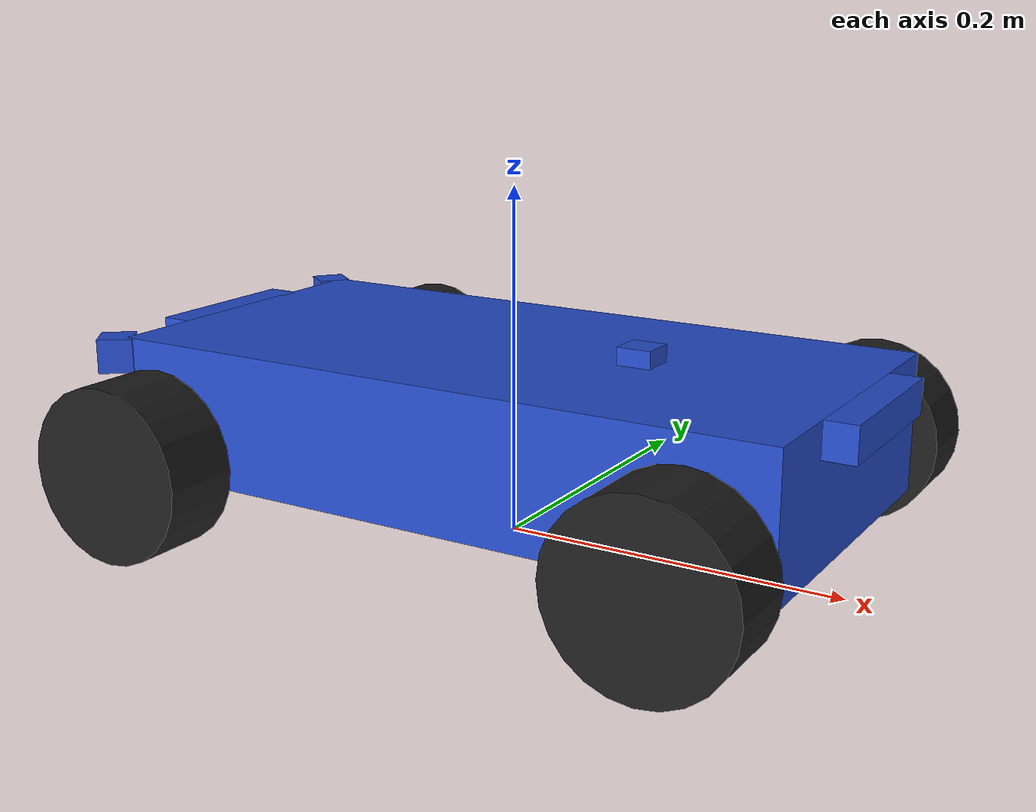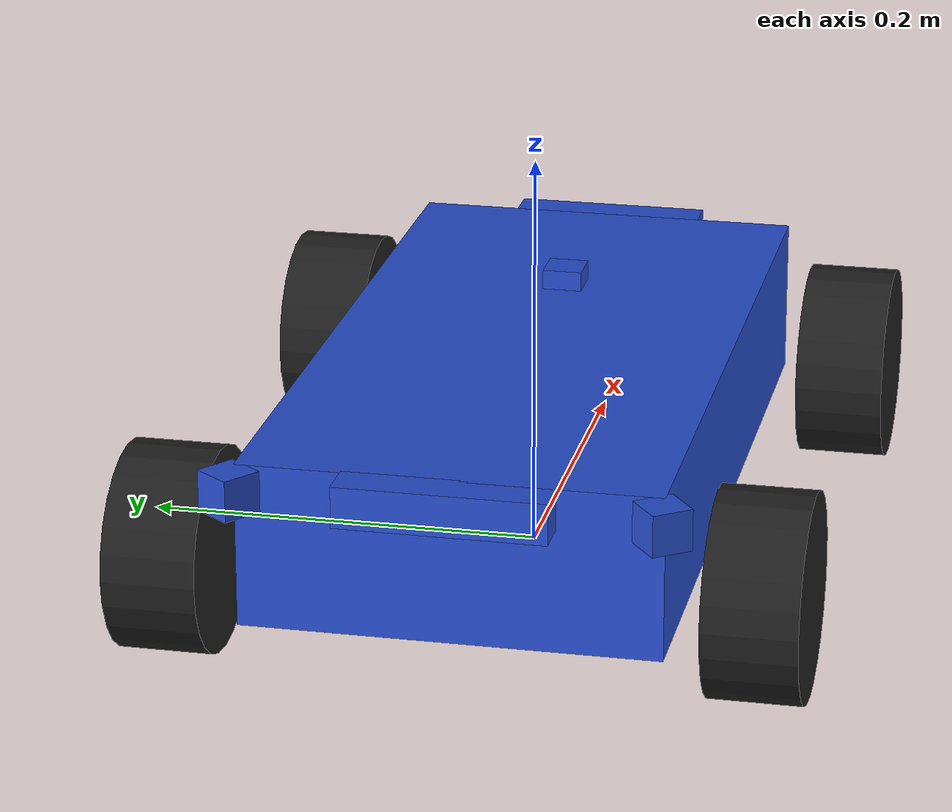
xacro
<?xml version="1.0"?>

<robot name="f1tenth_reverse_parking" xmlns:xacro="http://www.ros.org/wiki/xacro">

<!-- ros_control plugin -->
  <gazebo>
    <plugin name="gazebo_ros_control" filename="libgazebo_ros_control.so">
      <robotSimType>gazebo_ros_control/DefaultRobotHWSim</robotSimType>
    </plugin>
  </gazebo>

<!-- camera1 -->

  <gazebo reference="camera1_link">
    <sensor type="depth" name="camera1">
        <always_on>1</always_on>
        <visualize>true</visualize>
        <camera>
            <horizontal_fov>1.047</horizontal_fov>
            <image>
                <width>640</width>
                <height>480</height>
                <format>R8G8B8</format>
            </image>
            <depth_camera>

            </depth_camera>
            <clip>
                <near>0.1</near>
                <far>100</far>
            </clip>
        </camera>
             <plugin name="camera_controller" filename="libgazebo_ros_openni_kinect.so">
             <alwaysOn>true</alwaysOn>
                <updateRate>10.0</updateRate>
                <cameraName>camera1</cameraName>
                <frameName>camera_link</frameName>
            <imageTopicName>rgb/image_raw</imageTopicName>
            <depthImageTopicName>depth/image_raw</depthImageTopicName>
            <pointCloudTopicName>depth/points</pointCloudTopicName>
            <cameraInfoTopicName>rgb/camera_info</cameraInfoTopicName>
            <depthImageCameraInfoTopicName>depth/camera_info</depthImageCameraInfoTopicName>
            <pointCloudCutoff>0.4</pointCloudCutoff>
                <hackBaseline>0.07</hackBaseline>
                <distortionK1>0.0</distortionK1>
                <distortionK2>0.0</distortionK2>
                <distortionK3>0.0</distortionK3>
                <distortionT1>0.0</distortionT1>
                <distortionT2>0.0</distortionT2>
            <CxPrime>0.0</CxPrime>
            <Cx>0.0</Cx>
            <Cy>0.0</Cy>
            <focalLength>0.0</focalLength>
            </plugin>
    </sensor>
  </gazebo>

<!-- camera2 -->

  <gazebo reference="camera2_link">
    <sensor type="depth" name="camera2">
        <always_on>1</always_on>
        <visualize>true</visualize>
        <camera>
            <horizontal_fov>1.047</horizontal_fov>
            <image>
                <width>640</width>
                <height>480</height>
                <format>R8G8B8</format>
            </image>
            <depth_camera>

            </depth_camera>
            <clip>
                <near>0.1</near>
                <far>100</far>
            </clip>
        </camera>
             <plugin name="camera_controller" filename="libgazebo_ros_openni_kinect.so">
             <alwaysOn>true</alwaysOn>
                <updateRate>10.0</updateRate>
                <cameraName>camera2</cameraName>
                <frameName>camera_link</frameName>
            <imageTopicName>rgb/image_raw</imageTopicName>
            <depthImageTopicName>depth/image_raw</depthImageTopicName>
            <pointCloudTopicName>depth/points</pointCloudTopicName>
            <cameraInfoTopicName>rgb/camera_info</cameraInfoTopicName>
            <depthImageCameraInfoTopicName>depth/camera_info</depthImageCameraInfoTopicName>
            <pointCloudCutoff>0.4</pointCloudCutoff>
                <hackBaseline>0.07</hackBaseline>
                <distortionK1>0.0</distortionK1>
                <distortionK2>0.0</distortionK2>
                <distortionK3>0.0</distortionK3>
                <distortionT1>0.0</distortionT1>
                <distortionT2>0.0</distortionT2>
            <CxPrime>0.0</CxPrime>
            <Cx>0.0</Cx>
            <Cy>0.0</Cy>
            <focalLength>0.0</focalLength>
            </plugin>
    </sensor>
  </gazebo>

<!-- camera3 -->

  <gazebo reference="camera3_link">
    <sensor type="depth" name="camera3">
        <always_on>1</always_on>
        <visualize>true</visualize>
        <camera>
            <horizontal_fov>1.047</horizontal_fov>
            <image>
                <width>640</width>
                <height>480</height>
                <format>R8G8B8</format>
            </image>
            <depth_camera>

            </depth_camera>
            <clip>
                <near>0.1</near>
                <far>100</far>
            </clip>
        </camera>
             <plugin name="camera_controller" filename="libgazebo_ros_openni_kinect.so">
             <alwaysOn>true</alwaysOn>
                <updateRate>10.0</updateRate>
                <cameraName>camera3</cameraName>
                <frameName>camera_link</frameName>
            <imageTopicName>rgb/image_raw</imageTopicName>
            <depthImageTopicName>depth/image_raw</depthImageTopicName>
            <pointCloudTopicName>depth/points</pointCloudTopicName>
            <cameraInfoTopicName>rgb/camera_info</cameraInfoTopicName>
            <depthImageCameraInfoTopicName>depth/camera_info</depthImageCameraInfoTopicName>
            <pointCloudCutoff>0.4</pointCloudCutoff>
                <hackBaseline>0.07</hackBaseline>
                <distortionK1>0.0</distortionK1>
                <distortionK2>0.0</distortionK2>
                <distortionK3>0.0</distortionK3>
                <distortionT1>0.0</distortionT1>
                <distortionT2>0.0</distortionT2>
            <CxPrime>0.0</CxPrime>
            <Cx>0.0</Cx>
            <Cy>0.0</Cy>
            <focalLength>0.0</focalLength>
            </plugin>
    </sensor>
  </gazebo>

<!-- camera4 -->

  <gazebo reference="camera4_link">
    <sensor type="depth" name="camera3">
        <always_on>1</always_on>
        <visualize>true</visualize>
        <camera>
            <horizontal_fov>1.047</horizontal_fov>
            <image>
                <width>640</width>
                <height>480</height>
                <format>R8G8B8</format>
            </image>
            <depth_camera>

            </depth_camera>
            <clip>
                <near>0.1</near>
                <far>100</far>
            </clip>
        </camera>
             <plugin name="camera_controller" filename="libgazebo_ros_openni_kinect.so">
             <alwaysOn>true</alwaysOn>
                <updateRate>10.0</updateRate>
                <cameraName>camera4</cameraName>
                <frameName>camera_link</frameName>
            <imageTopicName>rgb/image_raw</imageTopicName>
            <depthImageTopicName>depth/image_raw</depthImageTopicName>
            <pointCloudTopicName>depth/points</pointCloudTopicName>
            <cameraInfoTopicName>rgb/camera_info</cameraInfoTopicName>
            <depthImageCameraInfoTopicName>depth/camera_info</depthImageCameraInfoTopicName>
            <pointCloudCutoff>0.4</pointCloudCutoff>
                <hackBaseline>0.07</hackBaseline>
                <distortionK1>0.0</distortionK1>
                <distortionK2>0.0</distortionK2>
                <distortionK3>0.0</distortionK3>
                <distortionT1>0.0</distortionT1>
                <distortionT2>0.0</distortionT2>
            <CxPrime>0.0</CxPrime>
            <Cx>0.0</Cx>
            <Cy>0.0</Cy>
            <focalLength>0.0</focalLength>
            </plugin>
    </sensor>
  </gazebo>

<!--IMU-->

  <gazebo>
    <plugin name="imu_plugin" filename="libgazebo_ros_imu.so">
      <alwaysOn>true</alwaysOn>
      <bodyName>imu_link</bodyName>
      <topicName>imu</topicName>
      <serviceName>imu_service</serviceName>
      <gaussianNoise>0.0</gaussianNoise>
      <updateRate>20.0</updateRate>
    </plugin>
  </gazebo>

<!-- Import Rviz colors -->

  <xacro:include filename="$(find f1tenth_description)/urdf/materials.xacro" />

<!-- Null inertial element -->

  <xacro:macro name="null_inertial">
    <inertial>
      <mass value="0.001"/>
      <inertia ixx="0.001" ixy="0" ixz="0"
               iyy="0.001" iyz="0"
               izz="0.001"/>
      </inertial>
  </xacro:macro>

<!-- CHASSIS -->

  <link name="chassis">
    <pose>0 0 0 0 0 0</pose>

    <visual name='chassis_visual'>
      <origin xyz="0 0 0.07" rpy=" 0 0 0"/>
      <geometry>
        <box size=".4 .2 .08"/>
      </geometry>
      <material name="blue" />
    </visual>

    <collision name='chassis_collision'>
      <origin xyz="0 0 0.07" rpy=" 0 0 0"/>
      <geometry>
        <box size=".4 .2 .07"/>
      </geometry>
      <material name="blue" />
    </collision>

    <inertial>
      <origin xyz="0 0 0.075" rpy="0 0 0" />
      <mass value="4.0" />
      <inertia ixx="0.0141666"  ixy="0"  ixz="0"
               iyy="0.0541666"  iyz="0"
               izz="0.0666666" />
    </inertial>
  </link>

  <gazebo reference="chassis">
    <material>Gazebo/Orange</material>
  </gazebo>

<!--Random box to show which is front-->

  <link name="box">
    <visual name='box_visual'>
      <origin xyz="0 0 0" rpy=" 0 0 0"/>
      <geometry>
        <box size=".02 .02 .02"/>
      </geometry>
      <material name="blue" />
    </visual>

    <xacro:null_inertial/>

  </link>

  <joint type="fixed" name="box_joint">
     <origin xyz="0.08 0 0.11" rpy="0 0 0" />
    <parent link="chassis" />
    <child link="box" />
    <axis xyz="0 0 1" />
  </joint>

<!-- LEFT REAR WHEEL -->

  <link name="left_rear_wheel">

    <collision name="collision">
      <origin xyz="0 0 0" rpy="0 0 0" />
      <geometry>
        <cylinder length="0.045" radius="0.05" />
      </geometry>
    </collision>

    <visual name="left_rear_wheel_visual">
      <origin xyz="0 0 0" rpy="0 0 0" />
      <geometry>
        <cylinder length="0.045" radius="0.05" />
      </geometry>
    <material name="black" />
    </visual>

    <inertial>
      <origin xyz="0 0 0" rpy="0 0 0" />
      <mass value="0.29" />
      <inertia ixx="0.0027" ixy="0"  ixz="0"
               iyy="0.0027" iyz="0"
               izz="0.001111" />
      </inertial>

  </link>

  <!--left rear wheel joint-->

  <joint type="continuous" name="left_rear_wheel_joint">
     <origin xyz="-0.16 0.14 0.05" rpy="1.5708 0 0" />
    <parent link="chassis" />
    <child link="left_rear_wheel" />
    <axis xyz="0 0 -1" />
    <limit effort="10" velocity="100" />
  </joint>

  <!-- Material -->

  <gazebo reference="left_rear_wheel">
    <mu1>0.5</mu1>
    <mu2>0.5</mu2>
    <material>Gazebo/Black</material>
  </gazebo>

  <!--Transmission-->

  <transmission name="left_rear_wheel_trans">
    <type>transmission_interface/SimpleTransmission</type>
    <joint name="left_rear_wheel_joint">
      <hardwareInterface>EffortJointInterface</hardwareInterface>
    </joint>
    <actuator name="rear_motor">
      <hardwareInterface>EffortJointInterface</hardwareInterface>
      <mechanicalReduction>1</mechanicalReduction>
    </actuator>
  </transmission>

<!--RIGHT REAR WHEEL -->

  <link name="right_rear_wheel">

    <collision name="collision">
      <origin xyz="0 0 0.0" rpy="0 0 0" />
      <geometry>
        <cylinder length="0.045" radius="0.05" />
      </geometry>
    </collision>

    <visual name="right_rear_wheel_visual">
      <origin xyz="0 0 0" rpy="0 0 0" />
      <geometry>
        <cylinder length="0.045" radius="0.05" />
      </geometry>
    <material name="black" />
    </visual>

    <inertial>
      <origin xyz="0 0 0" rpy="0 0 0" />
      <mass value="0.29" />
      <inertia ixx="0.0027" ixy="0"  ixz="0"
               iyy="0.0027" iyz="0"
               izz="0.001111" />
    </inertial>
  </link>

  <!--right rear wheel joint-->

  <joint type="continuous" name="right_rear_wheel_joint">
     <origin xyz="-0.16 -0.14 0.05" rpy="1.5708 0 0" />
    <parent link="chassis" />
    <child link="right_rear_wheel" />
    <axis xyz="0 0 -1" />
    <limit effort="10" velocity="100" />
  </joint>

  <!-- Material -->
  <gazebo reference="right_rear_wheel">
    <mu1>0.5</mu1>
    <mu2>0.5</mu2>
    <material>Gazebo/Black</material>
  </gazebo>

  <!--Transmission-->

  <transmission name="right_rear_wheel_trans">
    <type>transmission_interface/SimpleTransmission</type>
    <joint name="right_rear_wheel_joint">
      <hardwareInterface>EffortJointInterface</hardwareInterface>
    </joint>
    <actuator name="rear_motor">
      <hardwareInterface>EffortJointInterface</hardwareInterface>
      <mechanicalReduction>1</mechanicalReduction>
    </actuator>
  </transmission>

<!-- left front wheel steering link-->

  <link name="left_steering_link">
    <xacro:null_inertial/>
  </link>

  <joint type="revolute" name="left_steering_joint">
    <origin xyz="0.16 0.14 0.05" rpy="0 0 0"/>
    <parent link="chassis" />
    <child link="left_steering_link" />
    <axis xyz="0 0 1" />
    <limit effort="10" lower="-0.5" upper="0.5" velocity="0.5" />
  </joint>

  <transmission name="left_steering_trans">
    <type>transmission_interface/SimpleTransmission</type>
    <joint name="left_steering_joint">
      <hardwareInterface>EffortJointInterface</hardwareInterface>
    </joint>
    <actuator name="left_steering_act">
      <hardwareInterface>EffortJointInterface</hardwareInterface>
      <mechanicalReduction>1</mechanicalReduction>
    </actuator>
  </transmission>

<!-- right front wheel steering link-->

  <link name="right_steering_link">
    <xacro:null_inertial/>
  </link>

  <joint type="revolute" name="right_steering_joint">
    <origin xyz="0.16 -0.14 0.05" rpy="0 0 0"/>
    <parent link="chassis" />
    <child link="right_steering_link" />
    <axis xyz="0 0 1" />
    <limit effort="10" lower="-0.5" upper="0.5" velocity="0.5" />
  </joint>

  <transmission name="right_steering_trans">
    <type>transmission_interface/SimpleTransmission</type>
    <joint name="right_steering_joint">
      <hardwareInterface>EffortJointInterface</hardwareInterface>
    </joint>
    <actuator name="right_steering_act">
      <hardwareInterface>EffortJointInterface</hardwareInterface>
      <mechanicalReduction>1</mechanicalReduction>
    </actuator>
  </transmission>

<!-- LEFT FRONT WHEEL -->

  <link name="left_front_wheel">

    <collision name="collision">
      <origin xyz="0 0 0" rpy="0 0 0" />
      <geometry>
        <cylinder length="0.045" radius="0.05" />
      </geometry>
    </collision>

    <visual name="left_front_wheel_visual">
      <origin xyz="0 0 0" rpy="0 0 0" />
      <geometry>
        <cylinder length="0.045" radius="0.05" />
      </geometry>
    <material name="black" />
    </visual>

    <inertial>
      <origin xyz="0 0 0" rpy="0 0 0" />
      <mass value="0.29" />
      <inertia ixx="0.0027" ixy="0"  ixz="0"
               iyy="0.0027" iyz="0"
               izz="0.001111" />
    </inertial>

  </link>

  <!--left front wheel joint-->

  <joint type="continuous" name="left_front_wheel_joint">
    <origin xyz="0 0 0" rpy="1.5708 0 0"/>
    <parent link="left_steering_link" />
    <child link="left_front_wheel" />
    <axis xyz="0 0 -1" />
    <limit effort="10" velocity="100" />
  </joint>

  <!-- Material -->
  <gazebo reference="left_front_wheel">
    <mu1>0.5</mu1>
    <mu2>0.5</mu2>
    <material>Gazebo/Black</material>
  </gazebo>

  <!--Transmission-->

  <transmission name="left_front_wheel_trans">
    <type>transmission_interface/SimpleTransmission</type>
    <joint name="left_front_wheel_joint">
      <hardwareInterface>EffortJointInterface</hardwareInterface>
    </joint>
    <actuator name="left_front_wheel_act">
      <hardwareInterface>EffortJointInterface</hardwareInterface>
      <mechanicalReduction>1</mechanicalReduction>
    </actuator>
  </transmission>

<!-- RIGHT FRONT WHEEL -->

  <link name="right_front_wheel">

    <collision name="collision">
      <origin xyz="0 0 0" rpy="0 0 0" />
      <geometry>
        <cylinder length="0.045" radius="0.05" />
      </geometry>
    </collision>

    <visual name="right_front_wheel_visual">
      <origin xyz="0 0 0" rpy="0 0 0" />
      <geometry>
        <cylinder length="0.045" radius="0.05" />
      </geometry>
    <material name="black" />
    </visual>

    <inertial>
      <origin xyz="0 0 0" rpy="0 0 0" />
      <mass value="0.29" />
      <inertia ixx="0.0027" ixy="0"  ixz="0"
               iyy="0.0027" iyz="0"
               izz="0.001111" />
    </inertial>
  </link>

  <!--right front wheel joint-->

  <joint type="continuous" name="right_front_wheel_joint">
    <origin xyz="0 0 0" rpy="1.5708 0 0"/>
    <parent link="right_steering_link" />
    <child link="right_front_wheel" />
    <axis xyz="0 0 -1" />
    <limit effort="10" velocity="100" />
  </joint>

  <!-- Material -->
  <gazebo reference="right_front_wheel">
    <mu1>0.5</mu1>
    <mu2>0.5</mu2>
    <material>Gazebo/Black</material>
  </gazebo>

  <!--Transmission-->

  <transmission name="right_front_wheel_trans">
    <type>transmission_interface/SimpleTransmission</type>
    <joint name="right_front_wheel_joint">
      <hardwareInterface>EffortJointInterface</hardwareInterface>
    </joint>
    <actuator name="right_front_wheel_act">
      <hardwareInterface>EffortJointInterface</hardwareInterface>
      <mechanicalReduction>1</mechanicalReduction>
    </actuator>
  </transmission>

  <!-- Link6 -->
  <gazebo reference="left_steering_link">
    <mu1>0.6</mu1>
    <mu2>0.6</mu2>
    <material>Gazebo/Orange</material>
  </gazebo>

  <!-- Link7 -->
  <gazebo reference="right_steering_link">
    <mu1>0.6</mu1>
    <mu2>0.6</mu2>
    <material>Gazebo/Orange</material>
  </gazebo>

<!-- Camera1 -->
  <link name="camera1_link">
    <collision>
      <origin xyz="0 0 0" rpy="0 0 0"/>
      <geometry>
    <box size=" 0.02 0.1 0.02"/>
      </geometry>
    </collision>

    <visual>
      <origin xyz="0 0 0" rpy="0 0 0"/>
      <geometry>
        <box size="0.02 0.1 0.02"/>
      </geometry>
      <material name="blue"/>
    </visual>

    <inertial>
      <mass value="1e-5" />
      <origin xyz="0 0 0" rpy="0 0 0"/>
      <inertia ixx="1e-6" ixy="0" ixz="0" iyy="1e-6" iyz="0" izz="1e-6" />
    </inertial>
  </link>

  <joint name="camera1_joint" type="fixed">
    <axis xyz="0 1 0" />
    <origin xyz="0.208 0 0.1" rpy="0 0 0"/>
    <parent link="chassis"/>
    <child link="camera1_link"/>
  </joint>

<!-- Camera2 -->
  <link name="camera2_link">
    <collision>
      <origin xyz="0 0 0" rpy="0 0 0"/>
      <geometry>
    <box size=" 0.02 0.1 0.02"/>
      </geometry>
    </collision>

    <visual>
      <origin xyz="0 0 0" rpy="0 0 0"/>
      <geometry>
        <box size="0.02 0.1 0.02"/>
      </geometry>
      <material name="blue"/>
    </visual>

    <inertial>
      <mass value="1e-5" />
      <origin xyz="0 0 0" rpy="0 0 0"/>
      <inertia ixx="1e-6" ixy="0" ixz="0" iyy="1e-6" iyz="0" izz="1e-6" />
    </inertial>
  </link>

  <joint name="camera2_joint" type="fixed">
    <axis xyz="0 1 0" />
    <origin xyz="-0.208 0 0.1" rpy="0 0 3.14"/>
    <parent link="chassis"/>
    <child link="camera2_link"/>
  </joint>

<!-- Camera3 -->
  <link name="camera3_link">

    <visual>
      <origin xyz="0 0 0" rpy="0 0 0"/>
      <geometry>
        <box size="0.02 0.02 0.02"/>
      </geometry>
      <material name="blue"/>
    </visual>

    <xacro:null_inertial/>
  </link>

  <joint name="camera3_joint" type="fixed">
    <axis xyz="0 1 0" />
    <origin xyz="-0.208 0.10 0.1" rpy="0 0 2.5"/>
    <parent link="chassis"/>
    <child link="camera3_link"/>
  </joint>

<!-- Camera4 -->
  <link name="camera4_link">

    <visual>
      <origin xyz="0 0 0" rpy="0 0 0"/>
      <geometry>
        <box size="0.02 0.02 0.02"/>
      </geometry>
      <material name="blue"/>
    </visual>

    <xacro:null_inertial/>
  </link>

  <joint name="camera4_joint" type="fixed">
    <axis xyz="0 1 0" />
    <origin xyz="-0.208 -0.10 0.1" rpy="0 0 -2.5"/>
    <parent link="chassis"/>
    <child link="camera4_link"/>
  </joint>

<!--IMU-->

  <link name="imu_link">
    <xacro:null_inertial/>
  </link>

  <joint name="imu_joint" type="fixed">
    <axis xyz="0 1 0" />
    <origin xyz="0 0 0.1" rpy="0 0 0"/>
    <parent link="chassis"/>
    <child link="imu_link"/>
  </joint>
</robot>
